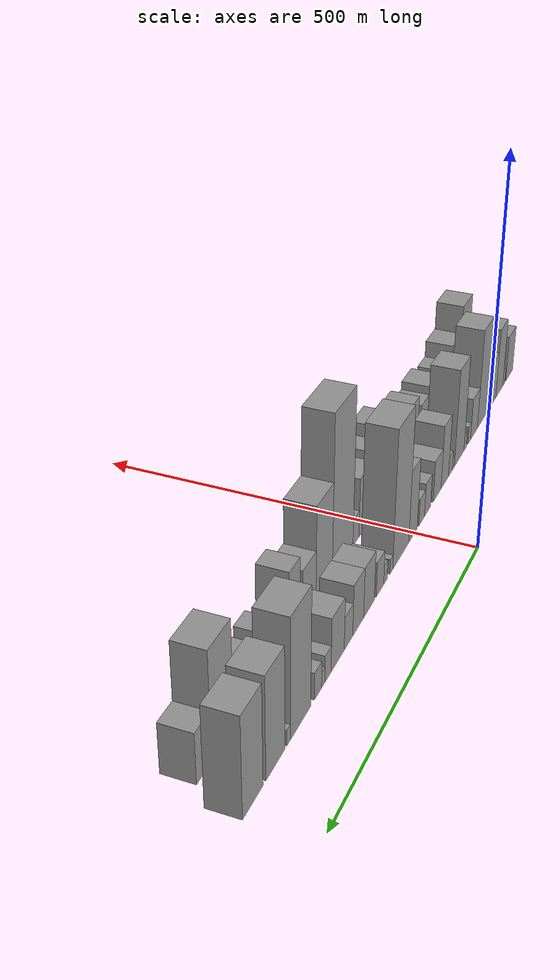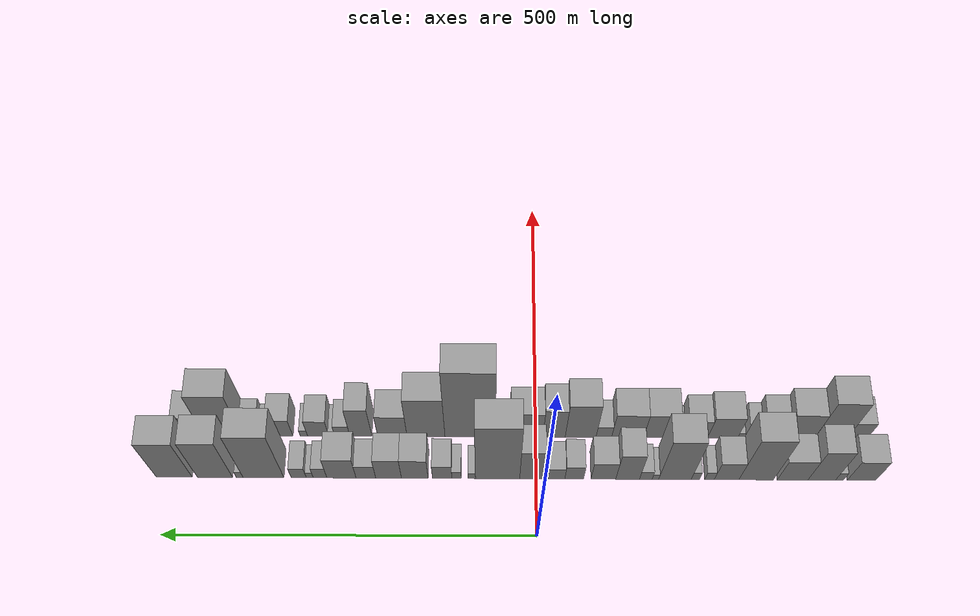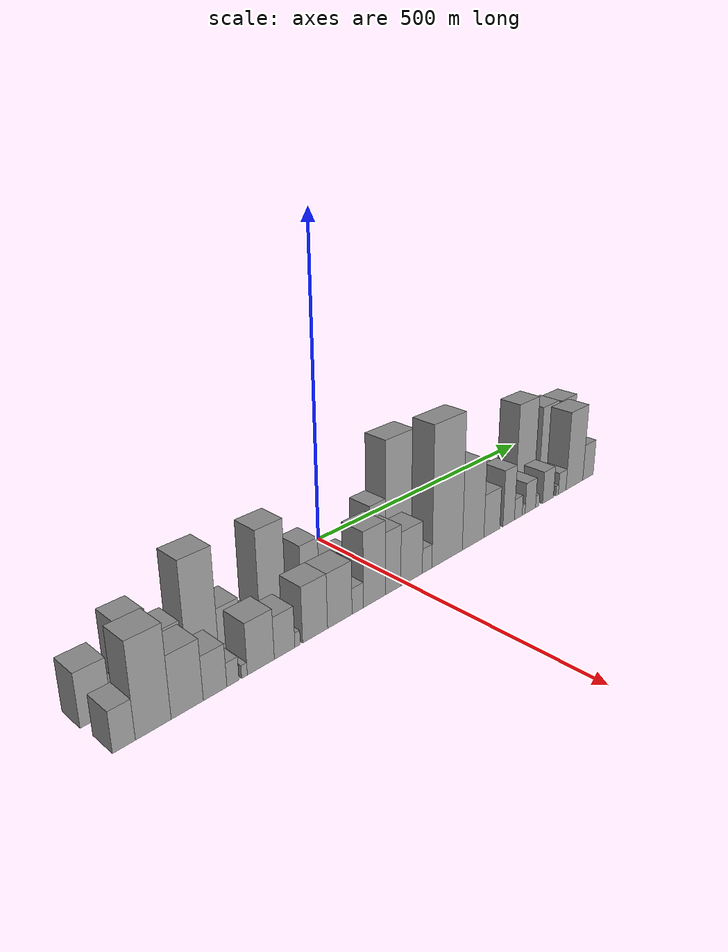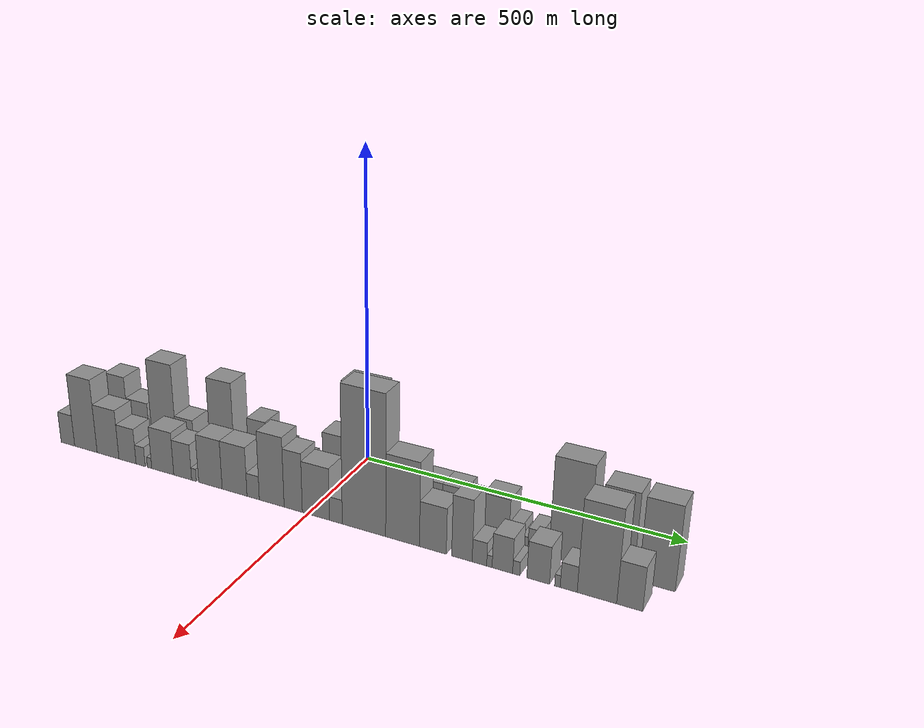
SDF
<sdf version="1.6">
 <world name="default">
  <scene>
   <sky><clouds><speed>12</speed></clouds></sky>
   <ambient>0.4 0.4 0.4 1</ambient>
   <background>0.7 0.7 0.7 1</background>
   <shadows>1</shadows>
  </scene>
  <gravity>0 0 -9.8066</gravity>
  <magnetic_field>6e-06 2.3e-05 -4.2e-05</magnetic_field>
  <physics default="0" name="default_physics" type="ode">
   <ode>
    <solver>
     <type>quick</type>
     <iters>10</iters>
     <sor>1.0</sor>
     <use_dynamic_moi_rescaling>0</use_dynamic_moi_rescaling>
    </solver>
    <constraints>
     <cfm>0</cfm>
     <erp>0.2</erp>
     <contact_max_correcting_vel>100</contact_max_correcting_vel>
     <contact_surface_layer>0.001</contact_surface_layer>
    </constraints>
   </ode>
   <max_step_size>0.004</max_step_size>
   <real_time_factor>1</real_time_factor>
   <real_time_update_rate>250</real_time_update_rate>
  </physics>
  <light name="sun" type="directional">
   <pose>0 0 10 0 0 0</pose>
   <diffuse>0.8 0.8 0.8 1</diffuse>
   <specular>0.2 0.2 0.2 1</specular>
   <attenuation>
    <range>1000</range>
    <constant>0.9</constant>
    <linear>0.01</linear>
    <quadratic>0.001</quadratic>
   </attenuation>
   <direction>-0.5 0.1 -0.9</direction>
  </light>
  <model name="building_1">
   <static>1</static>
   <pose>100.0000 -440.6567 0 0.000000 0.000000 0.000000</pose>
   <link name="link">
    <pose>0 0 36.00 0 0 0</pose>
    <collision name="collision"><geometry><box><size>40.0000 38.6867 72.0000</size></box></geometry></collision>
    <visual name="visual">
     <cast_shadows>0</cast_shadows>
     <geometry><box><size>40.0000 38.6867 72.0000</size></box></geometry>
     <material>
      <script>
       <uri>model://grey_wall/materials/scripts</uri>
       <uri>model://grey_wall/materials/textures</uri>
       <name>vrc/grey_wall</name>
      </script>
     </material>
    </visual>
   </link>
  </model>
  <model name="building_2">
   <static>1</static>
   <pose>100.0000 -410.8461 0 0.000000 0.000000 0.000000</pose>
   <link name="link">
    <pose>0 0 13.50 0 0 0</pose>
    <collision name="collision"><geometry><box><size>40.0000 10.9344 27.0000</size></box></geometry></collision>
    <visual name="visual">
     <cast_shadows>0</cast_shadows>
     <geometry><box><size>40.0000 10.9344 27.0000</size></box></geometry>
     <material>
      <script>
       <uri>model://grey_wall/materials/scripts</uri>
       <uri>model://grey_wall/materials/textures</uri>
       <name>vrc/grey_wall</name>
      </script>
     </material>
    </visual>
   </link>
  </model>
  <model name="building_3">
   <static>1</static>
   <pose>100.0000 -386.6765 0 0.000000 0.000000 0.000000</pose>
   <link name="link">
    <pose>0 0 54.00 0 0 0</pose>
    <collision name="collision"><geometry><box><size>40.0000 37.4049 108.0000</size></box></geometry></collision>
    <visual name="visual">
     <cast_shadows>0</cast_shadows>
     <geometry><box><size>40.0000 37.4049 108.0000</size></box></geometry>
     <material>
      <script>
       <uri>model://grey_wall/materials/scripts</uri>
       <uri>model://grey_wall/materials/textures</uri>
       <name>vrc/grey_wall</name>
      </script>
     </material>
    </visual>
   </link>
  </model>
  <model name="building_4">
   <static>1</static>
   <pose>100.0000 -347.1425 0 0.000000 0.000000 0.000000</pose>
   <link name="link">
    <pose>0 0 36.00 0 0 0</pose>
    <collision name="collision"><geometry><box><size>40.0000 41.6631 72.0000</size></box></geometry></collision>
    <visual name="visual">
     <cast_shadows>0</cast_shadows>
     <geometry><box><size>40.0000 41.6631 72.0000</size></box></geometry>
     <material>
      <script>
       <uri>model://grey_wall/materials/scripts</uri>
       <uri>model://grey_wall/materials/textures</uri>
       <name>vrc/grey_wall</name>
      </script>
     </material>
    </visual>
   </link>
  </model>
  <model name="building_5">
   <static>1</static>
   <pose>100.0000 -297.8931 0 0.000000 0.000000 0.000000</pose>
   <link name="link">
    <pose>0 0 75.00 0 0 0</pose>
    <collision name="collision"><geometry><box><size>40.0000 46.8356 150.0000</size></box></geometry></collision>
    <visual name="visual">
     <cast_shadows>0</cast_shadows>
     <geometry><box><size>40.0000 46.8356 150.0000</size></box></geometry>
     <material>
      <script>
       <uri>model://grey_wall/materials/scripts</uri>
       <uri>model://grey_wall/materials/textures</uri>
       <name>vrc/grey_wall</name>
      </script>
     </material>
    </visual>
   </link>
  </model>
  <model name="building_6">
   <static>1</static>
   <pose>100.0000 -257.7017 0 0.000000 0.000000 0.000000</pose>
   <link name="link">
    <pose>0 0 31.50 0 0 0</pose>
    <collision name="collision"><geometry><box><size>40.0000 33.5474 63.0000</size></box></geometry></collision>
    <visual name="visual">
     <cast_shadows>0</cast_shadows>
     <geometry><box><size>40.0000 33.5474 63.0000</size></box></geometry>
     <material>
      <script>
       <uri>model://grey_wall/materials/scripts</uri>
       <uri>model://grey_wall/materials/textures</uri>
       <name>vrc/grey_wall</name>
      </script>
     </material>
    </visual>
   </link>
  </model>
  <model name="building_7">
   <static>1</static>
   <pose>100.0000 -234.4799 0 0.000000 0.000000 0.000000</pose>
   <link name="link">
    <pose>0 0 13.50 0 0 0</pose>
    <collision name="collision"><geometry><box><size>40.0000 12.8960 27.0000</size></box></geometry></collision>
    <visual name="visual">
     <cast_shadows>0</cast_shadows>
     <geometry><box><size>40.0000 12.8960 27.0000</size></box></geometry>
     <material>
      <script>
       <uri>model://grey_wall/materials/scripts</uri>
       <uri>model://grey_wall/materials/textures</uri>
       <name>vrc/grey_wall</name>
      </script>
     </material>
    </visual>
   </link>
  </model>
  <model name="building_8">
   <static>1</static>
   <pose>100.0000 -215.3962 0 0.000000 0.000000 0.000000</pose>
   <link name="link">
    <pose>0 0 13.50 0 0 0</pose>
    <collision name="collision"><geometry><box><size>40.0000 11.2715 27.0000</size></box></geometry></collision>
    <visual name="visual">
     <cast_shadows>0</cast_shadows>
     <geometry><box><size>40.0000 11.2715 27.0000</size></box></geometry>
     <material>
      <script>
       <uri>model://grey_wall/materials/scripts</uri>
       <uri>model://grey_wall/materials/textures</uri>
       <name>vrc/grey_wall</name>
      </script>
     </material>
    </visual>
   </link>
  </model>
  <model name="building_9">
   <static>1</static>
   <pose>100.0000 -187.7195 0 0.000000 0.000000 0.000000</pose>
   <link name="link">
    <pose>0 0 72.00 0 0 0</pose>
    <collision name="collision"><geometry><box><size>40.0000 44.0818 144.0000</size></box></geometry></collision>
    <visual name="visual">
     <cast_shadows>0</cast_shadows>
     <geometry><box><size>40.0000 44.0818 144.0000</size></box></geometry>
     <material>
      <script>
       <uri>model://grey_wall/materials/scripts</uri>
       <uri>model://grey_wall/materials/textures</uri>
       <name>vrc/grey_wall</name>
      </script>
     </material>
    </visual>
   </link>
  </model>
  <model name="building_10">
   <static>1</static>
   <pose>100.0000 -161.2740 0 0.000000 0.000000 0.000000</pose>
   <link name="link">
    <pose>0 0 9.00 0 0 0</pose>
    <collision name="collision"><geometry><box><size>40.0000 8.8093 18.0000</size></box></geometry></collision>
    <visual name="visual">
     <cast_shadows>0</cast_shadows>
     <geometry><box><size>40.0000 8.8093 18.0000</size></box></geometry>
     <material>
      <script>
       <uri>model://grey_wall/materials/scripts</uri>
       <uri>model://grey_wall/materials/textures</uri>
       <name>vrc/grey_wall</name>
      </script>
     </material>
    </visual>
   </link>
  </model>
  <model name="building_11">
   <static>1</static>
   <pose>100.0000 -148.2753 0 0.000000 0.000000 0.000000</pose>
   <link name="link">
    <pose>0 0 15.00 0 0 0</pose>
    <collision name="collision"><geometry><box><size>40.0000 17.1881 30.0000</size></box></geometry></collision>
    <visual name="visual">
     <cast_shadows>0</cast_shadows>
     <geometry><box><size>40.0000 17.1881 30.0000</size></box></geometry>
     <material>
      <script>
       <uri>model://grey_wall/materials/scripts</uri>
       <uri>model://grey_wall/materials/textures</uri>
       <name>vrc/grey_wall</name>
      </script>
     </material>
    </visual>
   </link>
  </model>
  <model name="building_12">
   <static>1</static>
   <pose>100.0000 -123.5787 0 0.000000 0.000000 0.000000</pose>
   <link name="link">
    <pose>0 0 46.50 0 0 0</pose>
    <collision name="collision"><geometry><box><size>40.0000 32.2051 93.0000</size></box></geometry></collision>
    <visual name="visual">
     <cast_shadows>0</cast_shadows>
     <geometry><box><size>40.0000 32.2051 93.0000</size></box></geometry>
     <material>
      <script>
       <uri>model://grey_wall/materials/scripts</uri>
       <uri>model://grey_wall/materials/textures</uri>
       <name>vrc/grey_wall</name>
      </script>
     </material>
    </visual>
   </link>
  </model>
  <model name="building_13">
   <static>1</static>
   <pose>100.0000 -90.7277 0 0.000000 0.000000 0.000000</pose>
   <link name="link">
    <pose>0 0 30.00 0 0 0</pose>
    <collision name="collision"><geometry><box><size>40.0000 33.4969 60.0000</size></box></geometry></collision>
    <visual name="visual">
     <cast_shadows>0</cast_shadows>
     <geometry><box><size>40.0000 33.4969 60.0000</size></box></geometry>
     <material>
      <script>
       <uri>model://grey_wall/materials/scripts</uri>
       <uri>model://grey_wall/materials/textures</uri>
       <name>vrc/grey_wall</name>
      </script>
     </material>
    </visual>
   </link>
  </model>
  <model name="building_14">
   <static>1</static>
   <pose>100.0000 -51.2575 0 0.000000 0.000000 0.000000</pose>
   <link name="link">
    <pose>0 0 24.00 0 0 0</pose>
    <collision name="collision"><geometry><box><size>40.0000 25.4435 48.0000</size></box></geometry></collision>
    <visual name="visual">
     <cast_shadows>0</cast_shadows>
     <geometry><box><size>40.0000 25.4435 48.0000</size></box></geometry>
     <material>
      <script>
       <uri>model://grey_wall/materials/scripts</uri>
       <uri>model://grey_wall/materials/textures</uri>
       <name>vrc/grey_wall</name>
      </script>
     </material>
    </visual>
   </link>
  </model>
  <model name="building_15">
   <static>1</static>
   <pose>100.0000 -27.1117 0 0.000000 0.000000 0.000000</pose>
   <link name="link">
    <pose>0 0 19.50 0 0 0</pose>
    <collision name="collision"><geometry><box><size>40.0000 22.8482 39.0000</size></box></geometry></collision>
    <visual name="visual">
     <cast_shadows>0</cast_shadows>
     <geometry><box><size>40.0000 22.8482 39.0000</size></box></geometry>
     <material>
      <script>
       <uri>model://grey_wall/materials/scripts</uri>
       <uri>model://grey_wall/materials/textures</uri>
       <name>vrc/grey_wall</name>
      </script>
     </material>
    </visual>
   </link>
  </model>
  <model name="building_16">
   <static>1</static>
   <pose>100.0000 6.4995 0 0.000000 0.000000 0.000000</pose>
   <link name="link">
    <pose>0 0 51.00 0 0 0</pose>
    <collision name="collision"><geometry><box><size>40.0000 32.3741 102.0000</size></box></geometry></collision>
    <visual name="visual">
     <cast_shadows>0</cast_shadows>
     <geometry><box><size>40.0000 32.3741 102.0000</size></box></geometry>
     <material>
      <script>
       <uri>model://grey_wall/materials/scripts</uri>
       <uri>model://grey_wall/materials/textures</uri>
       <name>vrc/grey_wall</name>
      </script>
     </material>
    </visual>
   </link>
  </model>
  <model name="building_17">
   <static>1</static>
   <pose>100.0000 52.6617 0 0.000000 0.000000 0.000000</pose>
   <link name="link">
    <pose>0 0 96.00 0 0 0</pose>
    <collision name="collision"><geometry><box><size>40.0000 59.9502 192.0000</size></box></geometry></collision>
    <visual name="visual">
     <cast_shadows>0</cast_shadows>
     <geometry><box><size>40.0000 59.9502 192.0000</size></box></geometry>
     <material>
      <script>
       <uri>model://grey_wall/materials/scripts</uri>
       <uri>model://grey_wall/materials/textures</uri>
       <name>vrc/grey_wall</name>
      </script>
     </material>
    </visual>
   </link>
  </model>
  <model name="building_18">
   <static>1</static>
   <pose>100.0000 87.7302 0 0.000000 0.000000 0.000000</pose>
   <link name="link">
    <pose>0 0 10.50 0 0 0</pose>
    <collision name="collision"><geometry><box><size>40.0000 10.1868 21.0000</size></box></geometry></collision>
    <visual name="visual">
     <cast_shadows>0</cast_shadows>
     <geometry><box><size>40.0000 10.1868 21.0000</size></box></geometry>
     <material>
      <script>
       <uri>model://grey_wall/materials/scripts</uri>
       <uri>model://grey_wall/materials/textures</uri>
       <name>vrc/grey_wall</name>
      </script>
     </material>
    </visual>
   </link>
  </model>
  <model name="building_19">
   <static>1</static>
   <pose>100.0000 108.2329 0 0.000000 0.000000 0.000000</pose>
   <link name="link">
    <pose>0 0 13.50 0 0 0</pose>
    <collision name="collision"><geometry><box><size>40.0000 12.8187 27.0000</size></box></geometry></collision>
    <visual name="visual">
     <cast_shadows>0</cast_shadows>
     <geometry><box><size>40.0000 12.8187 27.0000</size></box></geometry>
     <material>
      <script>
       <uri>model://grey_wall/materials/scripts</uri>
       <uri>model://grey_wall/materials/textures</uri>
       <name>vrc/grey_wall</name>
      </script>
     </material>
    </visual>
   </link>
  </model>
  <model name="building_20">
   <static>1</static>
   <pose>100.0000 127.6953 0 0.000000 0.000000 0.000000</pose>
   <link name="link">
    <pose>0 0 24.00 0 0 0</pose>
    <collision name="collision"><geometry><box><size>40.0000 26.1061 48.0000</size></box></geometry></collision>
    <visual name="visual">
     <cast_shadows>0</cast_shadows>
     <geometry><box><size>40.0000 26.1061 48.0000</size></box></geometry>
     <material>
      <script>
       <uri>model://grey_wall/materials/scripts</uri>
       <uri>model://grey_wall/materials/textures</uri>
       <name>vrc/grey_wall</name>
      </script>
     </material>
    </visual>
   </link>
  </model>
  <model name="building_21">
   <static>1</static>
   <pose>100.0000 164.8276 0 0.000000 0.000000 0.000000</pose>
   <link name="link">
    <pose>0 0 34.50 0 0 0</pose>
    <collision name="collision"><geometry><box><size>40.0000 36.1584 69.0000</size></box></geometry></collision>
    <visual name="visual">
     <cast_shadows>0</cast_shadows>
     <geometry><box><size>40.0000 36.1584 69.0000</size></box></geometry>
     <material>
      <script>
       <uri>model://grey_wall/materials/scripts</uri>
       <uri>model://grey_wall/materials/textures</uri>
       <name>vrc/grey_wall</name>
      </script>
     </material>
    </visual>
   </link>
  </model>
  <model name="building_22">
   <static>1</static>
   <pose>100.0000 200.3634 0 0.000000 0.000000 0.000000</pose>
   <link name="link">
    <pose>0 0 34.50 0 0 0</pose>
    <collision name="collision"><geometry><box><size>40.0000 34.9132 69.0000</size></box></geometry></collision>
    <visual name="visual">
     <cast_shadows>0</cast_shadows>
     <geometry><box><size>40.0000 34.9132 69.0000</size></box></geometry>
     <material>
      <script>
       <uri>model://grey_wall/materials/scripts</uri>
       <uri>model://grey_wall/materials/textures</uri>
       <name>vrc/grey_wall</name>
      </script>
     </material>
    </visual>
   </link>
  </model>
  <model name="building_23">
   <static>1</static>
   <pose>100.0000 231.1238 0 0.000000 0.000000 0.000000</pose>
   <link name="link">
    <pose>0 0 22.50 0 0 0</pose>
    <collision name="collision"><geometry><box><size>40.0000 26.6077 45.0000</size></box></geometry></collision>
    <visual name="visual">
     <cast_shadows>0</cast_shadows>
     <geometry><box><size>40.0000 26.6077 45.0000</size></box></geometry>
     <material>
      <script>
       <uri>model://grey_wall/materials/scripts</uri>
       <uri>model://grey_wall/materials/textures</uri>
       <name>vrc/grey_wall</name>
      </script>
     </material>
    </visual>
   </link>
  </model>
  <model name="building_24">
   <static>1</static>
   <pose>100.0000 264.2056 0 0.000000 0.000000 0.000000</pose>
   <link name="link">
    <pose>0 0 36.00 0 0 0</pose>
    <collision name="collision"><geometry><box><size>40.0000 39.5560 72.0000</size></box></geometry></collision>
    <visual name="visual">
     <cast_shadows>0</cast_shadows>
     <geometry><box><size>40.0000 39.5560 72.0000</size></box></geometry>
     <material>
      <script>
       <uri>model://grey_wall/materials/scripts</uri>
       <uri>model://grey_wall/materials/textures</uri>
       <name>vrc/grey_wall</name>
      </script>
     </material>
    </visual>
   </link>
  </model>
  <model name="building_25">
   <static>1</static>
   <pose>100.0000 293.2290 0 0.000000 0.000000 0.000000</pose>
   <link name="link">
    <pose>0 0 18.00 0 0 0</pose>
    <collision name="collision"><geometry><box><size>40.0000 18.4908 36.0000</size></box></geometry></collision>
    <visual name="visual">
     <cast_shadows>0</cast_shadows>
     <geometry><box><size>40.0000 18.4908 36.0000</size></box></geometry>
     <material>
      <script>
       <uri>model://grey_wall/materials/scripts</uri>
       <uri>model://grey_wall/materials/textures</uri>
       <name>vrc/grey_wall</name>
      </script>
     </material>
    </visual>
   </link>
  </model>
  <model name="building_26">
   <static>1</static>
   <pose>100.0000 307.1522 0 0.000000 0.000000 0.000000</pose>
   <link name="link">
    <pose>0 0 10.50 0 0 0</pose>
    <collision name="collision"><geometry><box><size>40.0000 9.3556 21.0000</size></box></geometry></collision>
    <visual name="visual">
     <cast_shadows>0</cast_shadows>
     <geometry><box><size>40.0000 9.3556 21.0000</size></box></geometry>
     <material>
      <script>
       <uri>model://grey_wall/materials/scripts</uri>
       <uri>model://grey_wall/materials/textures</uri>
       <name>vrc/grey_wall</name>
      </script>
     </material>
    </visual>
   </link>
  </model>
  <model name="building_27">
   <static>1</static>
   <pose>100.0000 322.0519 0 0.000000 0.000000 0.000000</pose>
   <link name="link">
    <pose>0 0 18.00 0 0 0</pose>
    <collision name="collision"><geometry><box><size>40.0000 20.4438 36.0000</size></box></geometry></collision>
    <visual name="visual">
     <cast_shadows>0</cast_shadows>
     <geometry><box><size>40.0000 20.4438 36.0000</size></box></geometry>
     <material>
      <script>
       <uri>model://grey_wall/materials/scripts</uri>
       <uri>model://grey_wall/materials/textures</uri>
       <name>vrc/grey_wall</name>
      </script>
     </material>
    </visual>
   </link>
  </model>
  <model name="building_28">
   <static>1</static>
   <pose>100.0000 369.9561 0 0.000000 0.000000 0.000000</pose>
   <link name="link">
    <pose>0 0 78.00 0 0 0</pose>
    <collision name="collision"><geometry><box><size>40.0000 55.3646 156.0000</size></box></geometry></collision>
    <visual name="visual">
     <cast_shadows>0</cast_shadows>
     <geometry><box><size>40.0000 55.3646 156.0000</size></box></geometry>
     <material>
      <script>
       <uri>model://grey_wall/materials/scripts</uri>
       <uri>model://grey_wall/materials/textures</uri>
       <name>vrc/grey_wall</name>
      </script>
     </material>
    </visual>
   </link>
  </model>
  <model name="building_29">
   <static>1</static>
   <pose>100.0000 402.2558 0 0.000000 0.000000 0.000000</pose>
   <link name="link">
    <pose>0 0 10.50 0 0 0</pose>
    <collision name="collision"><geometry><box><size>40.0000 9.2348 21.0000</size></box></geometry></collision>
    <visual name="visual">
     <cast_shadows>0</cast_shadows>
     <geometry><box><size>40.0000 9.2348 21.0000</size></box></geometry>
     <material>
      <script>
       <uri>model://grey_wall/materials/scripts</uri>
       <uri>model://grey_wall/materials/textures</uri>
       <name>vrc/grey_wall</name>
      </script>
     </material>
    </visual>
   </link>
  </model>
  <model name="building_30">
   <static>1</static>
   <pose>100.0000 435.7212 0 0.000000 0.000000 0.000000</pose>
   <link name="link">
    <pose>0 0 66.00 0 0 0</pose>
    <collision name="collision"><geometry><box><size>40.0000 47.6961 132.0000</size></box></geometry></collision>
    <visual name="visual">
     <cast_shadows>0</cast_shadows>
     <geometry><box><size>40.0000 47.6961 132.0000</size></box></geometry>
     <material>
      <script>
       <uri>model://grey_wall/materials/scripts</uri>
       <uri>model://grey_wall/materials/textures</uri>
       <name>vrc/grey_wall</name>
      </script>
     </material>
    </visual>
   </link>
  </model>
  <model name="building_31">
   <static>1</static>
   <pose>100.0000 490.9184 0 0.000000 0.000000 0.000000</pose>
   <link name="link">
    <pose>0 0 64.50 0 0 0</pose>
    <collision name="collision"><geometry><box><size>40.0000 48.6983 129.0000</size></box></geometry></collision>
    <visual name="visual">
     <cast_shadows>0</cast_shadows>
     <geometry><box><size>40.0000 48.6983 129.0000</size></box></geometry>
     <material>
      <script>
       <uri>model://grey_wall/materials/scripts</uri>
       <uri>model://grey_wall/materials/textures</uri>
       <name>vrc/grey_wall</name>
      </script>
     </material>
    </visual>
   </link>
  </model>
  <model name="building_32">
   <static>1</static>
   <pose>160.0000 -442.2408 0 0.000000 0.000000 0.000000</pose>
   <link name="link">
    <pose>0 0 27.00 0 0 0</pose>
    <collision name="collision"><geometry><box><size>40.0000 27.5184 54.0000</size></box></geometry></collision>
    <visual name="visual">
     <cast_shadows>0</cast_shadows>
     <geometry><box><size>40.0000 27.5184 54.0000</size></box></geometry>
     <material>
      <script>
       <uri>model://grey_wall/materials/scripts</uri>
       <uri>model://grey_wall/materials/textures</uri>
       <name>vrc/grey_wall</name>
      </script>
     </material>
    </visual>
   </link>
  </model>
  <model name="building_33">
   <static>1</static>
   <pose>160.0000 -405.9663 0 0.000000 0.000000 0.000000</pose>
   <link name="link">
    <pose>0 0 63.00 0 0 0</pose>
    <collision name="collision"><geometry><box><size>40.0000 45.0306 126.0000</size></box></geometry></collision>
    <visual name="visual">
     <cast_shadows>0</cast_shadows>
     <geometry><box><size>40.0000 45.0306 126.0000</size></box></geometry>
     <material>
      <script>
       <uri>model://grey_wall/materials/scripts</uri>
       <uri>model://grey_wall/materials/textures</uri>
       <name>vrc/grey_wall</name>
      </script>
     </material>
    </visual>
   </link>
  </model>
  <model name="building_34">
   <static>1</static>
   <pose>160.0000 -361.9864 0 0.000000 0.000000 0.000000</pose>
   <link name="link">
    <pose>0 0 42.00 0 0 0</pose>
    <collision name="collision"><geometry><box><size>40.0000 42.9291 84.0000</size></box></geometry></collision>
    <visual name="visual">
     <cast_shadows>0</cast_shadows>
     <geometry><box><size>40.0000 42.9291 84.0000</size></box></geometry>
     <material>
      <script>
       <uri>model://grey_wall/materials/scripts</uri>
       <uri>model://grey_wall/materials/textures</uri>
       <name>vrc/grey_wall</name>
      </script>
     </material>
    </visual>
   </link>
  </model>
  <model name="building_35">
   <static>1</static>
   <pose>160.0000 -323.9863 0 0.000000 0.000000 0.000000</pose>
   <link name="link">
    <pose>0 0 30.00 0 0 0</pose>
    <collision name="collision"><geometry><box><size>40.0000 33.0711 60.0000</size></box></geometry></collision>
    <visual name="visual">
     <cast_shadows>0</cast_shadows>
     <geometry><box><size>40.0000 33.0711 60.0000</size></box></geometry>
     <material>
      <script>
       <uri>model://grey_wall/materials/scripts</uri>
       <uri>model://grey_wall/materials/textures</uri>
       <name>vrc/grey_wall</name>
      </script>
     </material>
    </visual>
   </link>
  </model>
  <model name="building_36">
   <static>1</static>
   <pose>160.0000 -298.7303 0 0.000000 0.000000 0.000000</pose>
   <link name="link">
    <pose>0 0 16.50 0 0 0</pose>
    <collision name="collision"><geometry><box><size>40.0000 17.4409 33.0000</size></box></geometry></collision>
    <visual name="visual">
     <cast_shadows>0</cast_shadows>
     <geometry><box><size>40.0000 17.4409 33.0000</size></box></geometry>
     <material>
      <script>
       <uri>model://grey_wall/materials/scripts</uri>
       <uri>model://grey_wall/materials/textures</uri>
       <name>vrc/grey_wall</name>
      </script>
     </material>
    </visual>
   </link>
  </model>
  <model name="building_37">
   <static>1</static>
   <pose>160.0000 -281.8091 0 0.000000 0.000000 0.000000</pose>
   <link name="link">
    <pose>0 0 9.00 0 0 0</pose>
    <collision name="collision"><geometry><box><size>40.0000 8.4014 18.0000</size></box></geometry></collision>
    <visual name="visual">
     <cast_shadows>0</cast_shadows>
     <geometry><box><size>40.0000 8.4014 18.0000</size></box></geometry>
     <material>
      <script>
       <uri>model://grey_wall/materials/scripts</uri>
       <uri>model://grey_wall/materials/textures</uri>
       <name>vrc/grey_wall</name>
      </script>
     </material>
    </visual>
   </link>
  </model>
  <model name="building_38">
   <static>1</static>
   <pose>160.0000 -256.9434 0 0.000000 0.000000 0.000000</pose>
   <link name="link">
    <pose>0 0 36.00 0 0 0</pose>
    <collision name="collision"><geometry><box><size>40.0000 41.3301 72.0000</size></box></geometry></collision>
    <visual name="visual">
     <cast_shadows>0</cast_shadows>
     <geometry><box><size>40.0000 41.3301 72.0000</size></box></geometry>
     <material>
      <script>
       <uri>model://grey_wall/materials/scripts</uri>
       <uri>model://grey_wall/materials/textures</uri>
       <name>vrc/grey_wall</name>
      </script>
     </material>
    </visual>
   </link>
  </model>
  <model name="building_39">
   <static>1</static>
   <pose>160.0000 -219.8043 0 0.000000 0.000000 0.000000</pose>
   <link name="link">
    <pose>0 0 30.00 0 0 0</pose>
    <collision name="collision"><geometry><box><size>40.0000 32.9483 60.0000</size></box></geometry></collision>
    <visual name="visual">
     <cast_shadows>0</cast_shadows>
     <geometry><box><size>40.0000 32.9483 60.0000</size></box></geometry>
     <material>
      <script>
       <uri>model://grey_wall/materials/scripts</uri>
       <uri>model://grey_wall/materials/textures</uri>
       <name>vrc/grey_wall</name>
      </script>
     </material>
    </visual>
   </link>
  </model>
  <model name="building_40">
   <static>1</static>
   <pose>160.0000 -198.9769 0 0.000000 0.000000 0.000000</pose>
   <link name="link">
    <pose>0 0 10.50 0 0 0</pose>
    <collision name="collision"><geometry><box><size>40.0000 8.7066 21.0000</size></box></geometry></collision>
    <visual name="visual">
     <cast_shadows>0</cast_shadows>
     <geometry><box><size>40.0000 8.7066 21.0000</size></box></geometry>
     <material>
      <script>
       <uri>model://grey_wall/materials/scripts</uri>
       <uri>model://grey_wall/materials/textures</uri>
       <name>vrc/grey_wall</name>
      </script>
     </material>
    </visual>
   </link>
  </model>
  <model name="building_41">
   <static>1</static>
   <pose>160.0000 -169.3782 0 0.000000 0.000000 0.000000</pose>
   <link name="link">
    <pose>0 0 40.50 0 0 0</pose>
    <collision name="collision"><geometry><box><size>40.0000 42.4907 81.0000</size></box></geometry></collision>
    <visual name="visual">
     <cast_shadows>0</cast_shadows>
     <geometry><box><size>40.0000 42.4907 81.0000</size></box></geometry>
     <material>
      <script>
       <uri>model://grey_wall/materials/scripts</uri>
       <uri>model://grey_wall/materials/textures</uri>
       <name>vrc/grey_wall</name>
      </script>
     </material>
    </visual>
   </link>
  </model>
  <model name="building_42">
   <static>1</static>
   <pose>160.0000 -126.1906 0 0.000000 0.000000 0.000000</pose>
   <link name="link">
    <pose>0 0 40.50 0 0 0</pose>
    <collision name="collision"><geometry><box><size>40.0000 43.8846 81.0000</size></box></geometry></collision>
    <visual name="visual">
     <cast_shadows>0</cast_shadows>
     <geometry><box><size>40.0000 43.8846 81.0000</size></box></geometry>
     <material>
      <script>
       <uri>model://grey_wall/materials/scripts</uri>
       <uri>model://grey_wall/materials/textures</uri>
       <name>vrc/grey_wall</name>
      </script>
     </material>
    </visual>
   </link>
  </model>
  <model name="building_43">
   <static>1</static>
   <pose>160.0000 -93.5358 0 0.000000 0.000000 0.000000</pose>
   <link name="link">
    <pose>0 0 19.50 0 0 0</pose>
    <collision name="collision"><geometry><box><size>40.0000 21.4249 39.0000</size></box></geometry></collision>
    <visual name="visual">
     <cast_shadows>0</cast_shadows>
     <geometry><box><size>40.0000 21.4249 39.0000</size></box></geometry>
     <material>
      <script>
       <uri>model://grey_wall/materials/scripts</uri>
       <uri>model://grey_wall/materials/textures</uri>
       <name>vrc/grey_wall</name>
      </script>
     </material>
    </visual>
   </link>
  </model>
  <model name="building_44">
   <static>1</static>
   <pose>160.0000 -61.5846 0 0.000000 0.000000 0.000000</pose>
   <link name="link">
    <pose>0 0 57.00 0 0 0</pose>
    <collision name="collision"><geometry><box><size>40.0000 42.4776 114.0000</size></box></geometry></collision>
    <visual name="visual">
     <cast_shadows>0</cast_shadows>
     <geometry><box><size>40.0000 42.4776 114.0000</size></box></geometry>
     <material>
      <script>
       <uri>model://grey_wall/materials/scripts</uri>
       <uri>model://grey_wall/materials/textures</uri>
       <name>vrc/grey_wall</name>
      </script>
     </material>
    </visual>
   </link>
  </model>
  <model name="building_45">
   <static>1</static>
   <pose>160.0000 -25.0171 0 0.000000 0.000000 0.000000</pose>
   <link name="link">
    <pose>0 0 48.00 0 0 0</pose>
    <collision name="collision"><geometry><box><size>40.0000 30.6573 96.0000</size></box></geometry></collision>
    <visual name="visual">
     <cast_shadows>0</cast_shadows>
     <geometry><box><size>40.0000 30.6573 96.0000</size></box></geometry>
     <material>
      <script>
       <uri>model://grey_wall/materials/scripts</uri>
       <uri>model://grey_wall/materials/textures</uri>
       <name>vrc/grey_wall</name>
      </script>
     </material>
    </visual>
   </link>
  </model>
  <model name="building_46">
   <static>1</static>
   <pose>160.0000 12.7705 0 0.000000 0.000000 0.000000</pose>
   <link name="link">
    <pose>0 0 42.00 0 0 0</pose>
    <collision name="collision"><geometry><box><size>40.0000 44.9179 84.0000</size></box></geometry></collision>
    <visual name="visual">
     <cast_shadows>0</cast_shadows>
     <geometry><box><size>40.0000 44.9179 84.0000</size></box></geometry>
     <material>
      <script>
       <uri>model://grey_wall/materials/scripts</uri>
       <uri>model://grey_wall/materials/textures</uri>
       <name>vrc/grey_wall</name>
      </script>
     </material>
    </visual>
   </link>
  </model>
  <model name="building_47">
   <static>1</static>
   <pose>160.0000 45.6101 0 0.000000 0.000000 0.000000</pose>
   <link name="link">
    <pose>0 0 19.50 0 0 0</pose>
    <collision name="collision"><geometry><box><size>40.0000 20.7615 39.0000</size></box></geometry></collision>
    <visual name="visual">
     <cast_shadows>0</cast_shadows>
     <geometry><box><size>40.0000 20.7615 39.0000</size></box></geometry>
     <material>
      <script>
       <uri>model://grey_wall/materials/scripts</uri>
       <uri>model://grey_wall/materials/textures</uri>
       <name>vrc/grey_wall</name>
      </script>
     </material>
    </visual>
   </link>
  </model>
  <model name="building_48">
   <static>1</static>
   <pose>160.0000 90.5186 0 0.000000 0.000000 0.000000</pose>
   <link name="link">
    <pose>0 0 111.00 0 0 0</pose>
    <collision name="collision"><geometry><box><size>40.0000 69.0555 222.0000</size></box></geometry></collision>
    <visual name="visual">
     <cast_shadows>0</cast_shadows>
     <geometry><box><size>40.0000 69.0555 222.0000</size></box></geometry>
     <material>
      <script>
       <uri>model://grey_wall/materials/scripts</uri>
       <uri>model://grey_wall/materials/textures</uri>
       <name>vrc/grey_wall</name>
      </script>
     </material>
    </visual>
   </link>
  </model>
  <model name="building_49">
   <static>1</static>
   <pose>160.0000 151.0954 0 0.000000 0.000000 0.000000</pose>
   <link name="link">
    <pose>0 0 66.00 0 0 0</pose>
    <collision name="collision"><geometry><box><size>40.0000 52.0981 132.0000</size></box></geometry></collision>
    <visual name="visual">
     <cast_shadows>0</cast_shadows>
     <geometry><box><size>40.0000 52.0981 132.0000</size></box></geometry>
     <material>
      <script>
       <uri>model://grey_wall/materials/scripts</uri>
       <uri>model://grey_wall/materials/textures</uri>
       <name>vrc/grey_wall</name>
      </script>
     </material>
    </visual>
   </link>
  </model>
  <model name="building_50">
   <static>1</static>
   <pose>160.0000 197.3498 0 0.000000 0.000000 0.000000</pose>
   <link name="link">
    <pose>0 0 36.00 0 0 0</pose>
    <collision name="collision"><geometry><box><size>40.0000 40.4108 72.0000</size></box></geometry></collision>
    <visual name="visual">
     <cast_shadows>0</cast_shadows>
     <geometry><box><size>40.0000 40.4108 72.0000</size></box></geometry>
     <material>
      <script>
       <uri>model://grey_wall/materials/scripts</uri>
       <uri>model://grey_wall/materials/textures</uri>
       <name>vrc/grey_wall</name>
      </script>
     </material>
    </visual>
   </link>
  </model>
  <model name="building_51">
   <static>1</static>
   <pose>160.0000 240.6836 0 0.000000 0.000000 0.000000</pose>
   <link name="link">
    <pose>0 0 48.00 0 0 0</pose>
    <collision name="collision"><geometry><box><size>40.0000 30.2567 96.0000</size></box></geometry></collision>
    <visual name="visual">
     <cast_shadows>0</cast_shadows>
     <geometry><box><size>40.0000 30.2567 96.0000</size></box></geometry>
     <material>
      <script>
       <uri>model://grey_wall/materials/scripts</uri>
       <uri>model://grey_wall/materials/textures</uri>
       <name>vrc/grey_wall</name>
      </script>
     </material>
    </visual>
   </link>
  </model>
  <model name="building_52">
   <static>1</static>
   <pose>160.0000 266.3919 0 0.000000 0.000000 0.000000</pose>
   <link name="link">
    <pose>0 0 18.00 0 0 0</pose>
    <collision name="collision"><geometry><box><size>40.0000 21.1600 36.0000</size></box></geometry></collision>
    <visual name="visual">
     <cast_shadows>0</cast_shadows>
     <geometry><box><size>40.0000 21.1600 36.0000</size></box></geometry>
     <material>
      <script>
       <uri>model://grey_wall/materials/scripts</uri>
       <uri>model://grey_wall/materials/textures</uri>
       <name>vrc/grey_wall</name>
      </script>
     </material>
    </visual>
   </link>
  </model>
  <model name="building_53">
   <static>1</static>
   <pose>160.0000 280.8625 0 0.000000 0.000000 0.000000</pose>
   <link name="link">
    <pose>0 0 9.00 0 0 0</pose>
    <collision name="collision"><geometry><box><size>40.0000 7.7812 18.0000</size></box></geometry></collision>
    <visual name="visual">
     <cast_shadows>0</cast_shadows>
     <geometry><box><size>40.0000 7.7812 18.0000</size></box></geometry>
     <material>
      <script>
       <uri>model://grey_wall/materials/scripts</uri>
       <uri>model://grey_wall/materials/textures</uri>
       <name>vrc/grey_wall</name>
      </script>
     </material>
    </visual>
   </link>
  </model>
  <model name="building_54">
   <static>1</static>
   <pose>160.0000 299.4323 0 0.000000 0.000000 0.000000</pose>
   <link name="link">
    <pose>0 0 27.00 0 0 0</pose>
    <collision name="collision"><geometry><box><size>40.0000 29.3583 54.0000</size></box></geometry></collision>
    <visual name="visual">
     <cast_shadows>0</cast_shadows>
     <geometry><box><size>40.0000 29.3583 54.0000</size></box></geometry>
     <material>
      <script>
       <uri>model://grey_wall/materials/scripts</uri>
       <uri>model://grey_wall/materials/textures</uri>
       <name>vrc/grey_wall</name>
      </script>
     </material>
    </visual>
   </link>
  </model>
  <model name="building_55">
   <static>1</static>
   <pose>160.0000 319.1750 0 0.000000 0.000000 0.000000</pose>
   <link name="link">
    <pose>0 0 10.50 0 0 0</pose>
    <collision name="collision"><geometry><box><size>40.0000 10.1271 21.0000</size></box></geometry></collision>
    <visual name="visual">
     <cast_shadows>0</cast_shadows>
     <geometry><box><size>40.0000 10.1271 21.0000</size></box></geometry>
     <material>
      <script>
       <uri>model://grey_wall/materials/scripts</uri>
       <uri>model://grey_wall/materials/textures</uri>
       <name>vrc/grey_wall</name>
      </script>
     </material>
    </visual>
   </link>
  </model>
  <model name="building_56">
   <static>1</static>
   <pose>160.0000 350.0350 0 0.000000 0.000000 0.000000</pose>
   <link name="link">
    <pose>0 0 28.50 0 0 0</pose>
    <collision name="collision"><geometry><box><size>40.0000 31.5930 57.0000</size></box></geometry></collision>
    <visual name="visual">
     <cast_shadows>0</cast_shadows>
     <geometry><box><size>40.0000 31.5930 57.0000</size></box></geometry>
     <material>
      <script>
       <uri>model://grey_wall/materials/scripts</uri>
       <uri>model://grey_wall/materials/textures</uri>
       <name>vrc/grey_wall</name>
      </script>
     </material>
    </visual>
   </link>
  </model>
  <model name="building_57">
   <static>1</static>
   <pose>160.0000 376.6534 0 0.000000 0.000000 0.000000</pose>
   <link name="link">
    <pose>0 0 9.00 0 0 0</pose>
    <collision name="collision"><geometry><box><size>40.0000 7.6439 18.0000</size></box></geometry></collision>
    <visual name="visual">
     <cast_shadows>0</cast_shadows>
     <geometry><box><size>40.0000 7.6439 18.0000</size></box></geometry>
     <material>
      <script>
       <uri>model://grey_wall/materials/scripts</uri>
       <uri>model://grey_wall/materials/textures</uri>
       <name>vrc/grey_wall</name>
      </script>
     </material>
    </visual>
   </link>
  </model>
  <model name="building_58">
   <static>1</static>
   <pose>160.0000 392.0320 0 0.000000 0.000000 0.000000</pose>
   <link name="link">
    <pose>0 0 19.50 0 0 0</pose>
    <collision name="collision"><geometry><box><size>40.0000 23.1134 39.0000</size></box></geometry></collision>
    <visual name="visual">
     <cast_shadows>0</cast_shadows>
     <geometry><box><size>40.0000 23.1134 39.0000</size></box></geometry>
     <material>
      <script>
       <uri>model://grey_wall/materials/scripts</uri>
       <uri>model://grey_wall/materials/textures</uri>
       <name>vrc/grey_wall</name>
      </script>
     </material>
    </visual>
   </link>
  </model>
  <model name="building_59">
   <static>1</static>
   <pose>160.0000 429.9810 0 0.000000 0.000000 0.000000</pose>
   <link name="link">
    <pose>0 0 70.50 0 0 0</pose>
    <collision name="collision"><geometry><box><size>40.0000 52.7845 141.0000</size></box></geometry></collision>
    <visual name="visual">
     <cast_shadows>0</cast_shadows>
     <geometry><box><size>40.0000 52.7845 141.0000</size></box></geometry>
     <material>
      <script>
       <uri>model://grey_wall/materials/scripts</uri>
       <uri>model://grey_wall/materials/textures</uri>
       <name>vrc/grey_wall</name>
      </script>
     </material>
    </visual>
   </link>
  </model>
  <model name="building_60">
   <static>1</static>
   <pose>160.0000 473.3453 0 0.000000 0.000000 0.000000</pose>
   <link name="link">
    <pose>0 0 33.00 0 0 0</pose>
    <collision name="collision"><geometry><box><size>40.0000 33.9442 66.0000</size></box></geometry></collision>
    <visual name="visual">
     <cast_shadows>0</cast_shadows>
     <geometry><box><size>40.0000 33.9442 66.0000</size></box></geometry>
     <material>
      <script>
       <uri>model://grey_wall/materials/scripts</uri>
       <uri>model://grey_wall/materials/textures</uri>
       <name>vrc/grey_wall</name>
      </script>
     </material>
    </visual>
   </link>
  </model>
 </world>
</sdf>
